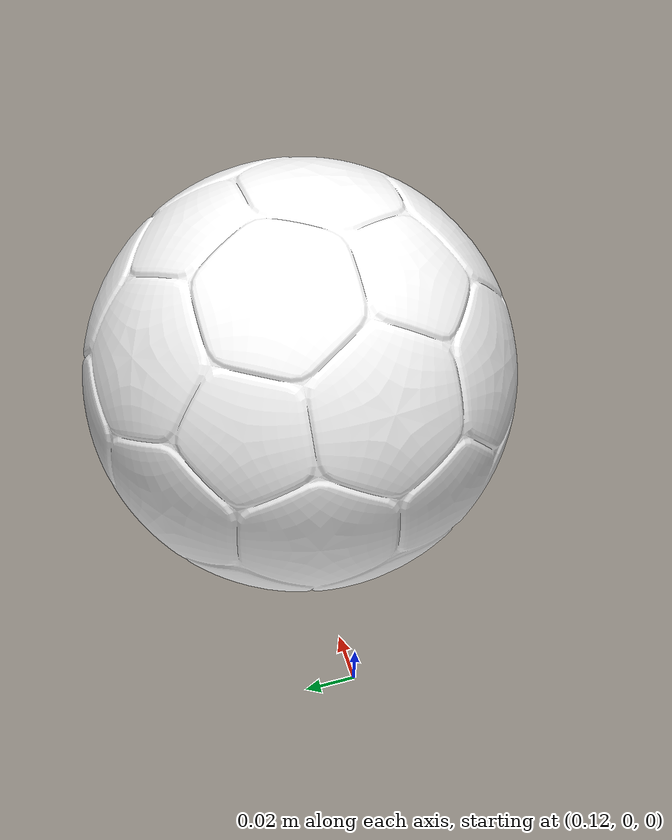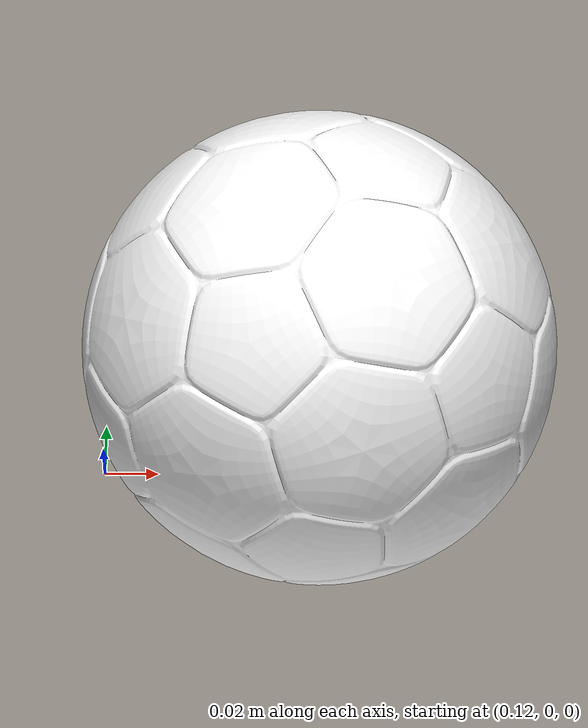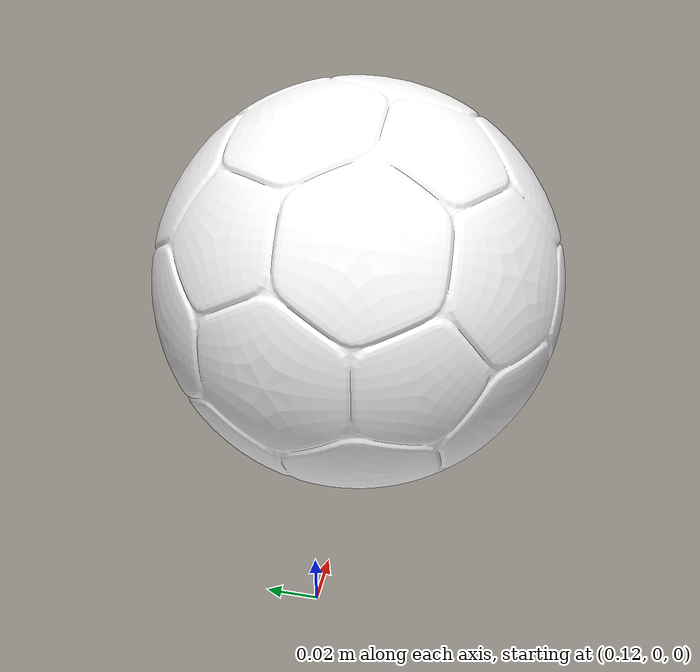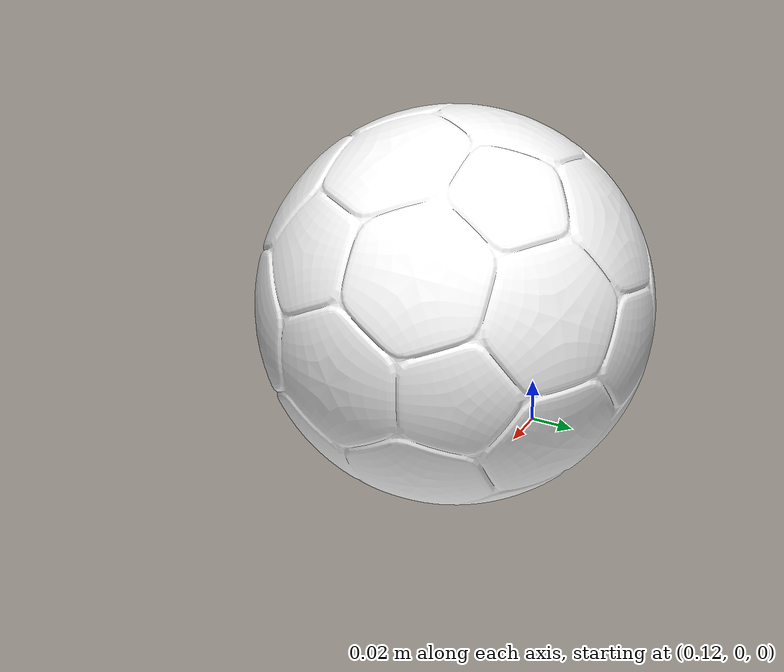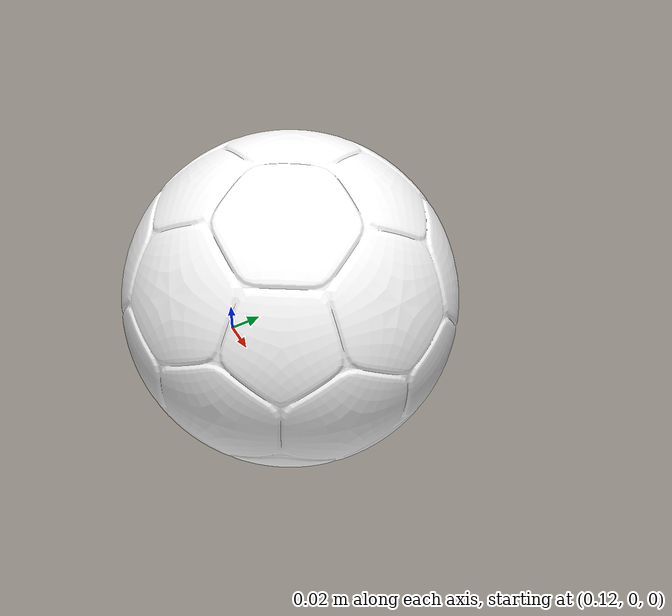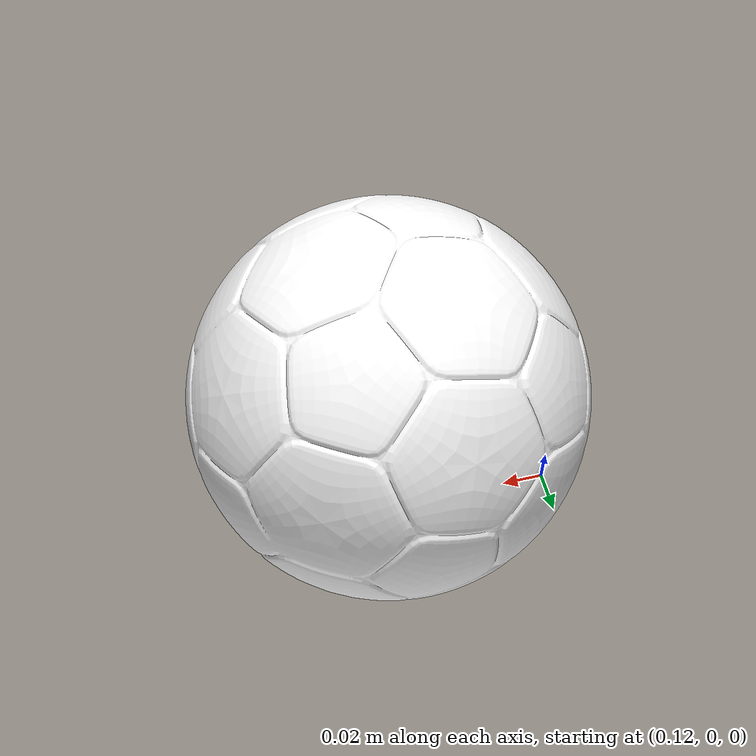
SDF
<sdf version='1.6'>
	<world name='default'>
	<gravity>0 0 -9.8</gravity>
		<model name='ball.obj'>
			<static>0</static>
			<pose frame=''>0.2 0 0.1 0 0 0</pose>
			<link name='link_d1'>
			<inertial>
			<mass>0.2</mass>
			<inertia>
			<ixx>0.16667</ixx>
			<ixy>0</ixy>
			<ixz>0</ixz>
			<iyy>0.16667</iyy>
			<iyz>0</iyz>
			<izz>0.16667</izz>
			</inertia>
			</inertial>
			<collision name='collision_2'>
			<geometry>
            <sphere>
                <radius> 0.075 </radius>
            </sphere>
          </geometry>
			  </collision>
			<visual name='visual'>
				<geometry>
				<mesh>
					<scale>0.1 0.1 0.1</scale>
					<uri>ball.obj</uri>
				</mesh>
				</geometry>
			<material>
				<ambient>1 1 1 1</ambient>
				<diffuse>1.00000 1.00000 1.000000 1</diffuse>
				<specular>0.1 .1 .1 1</specular>
				<emissive>0 0 0 0</emissive>
			 </material>
			 </visual>
			 </link>
			</model>
	</world>
</sdf>
